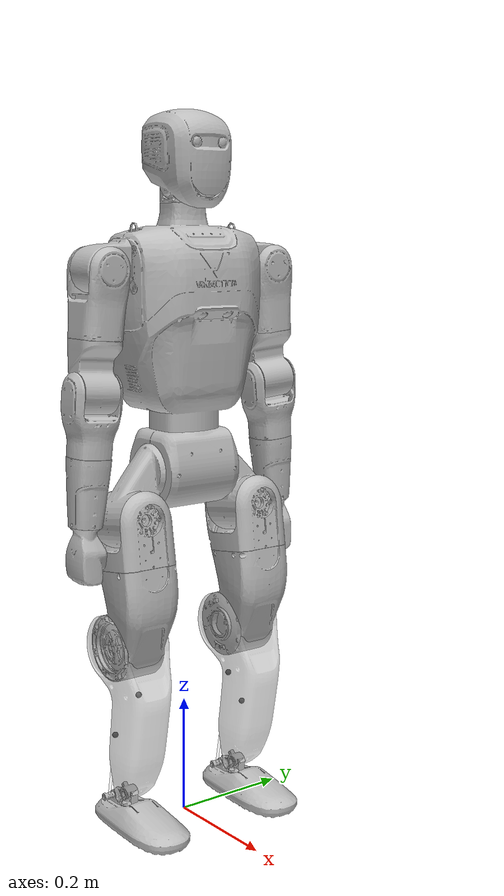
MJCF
<?xml version='1.0' encoding='utf-8'?>
<mujoco model="MiniV1-3_Lidar">
  <compiler angle="radian" meshdir="meshes_reduce_nonLidar/" />

  <option timestep="0.0002" />

  <default>
    <default class="mini">
      <default class="visual">
        <geom type="mesh" contype="0" conaffinity="0" group="2" density="0" material="silver" />
      </default>
      <default class="collision">
        <geom group="3" rgba="0.2 0.6 0.2 0.5" type="capsule" contype="1" conaffinity="1" />
        <default class="foot_capsule">
          <geom type="capsule" size="0.01" />
        </default>
      </default>
      <site group="5" rgba="1 0 0 1" />
    </default>
  </default>

  <asset>
    <material name="silver" rgba="0.752941 0.752941 0.752941 1" />
    <mesh name="pelvis_link" file="pelvis_link.STL" />
    <mesh name="left_hip_pitch_link" file="left_hip_pitch_link.STL" />
    <mesh name="left_hip_roll_link" file="left_hip_roll_link.STL" />
    <mesh name="left_hip_yaw_link" file="left_hip_yaw_link.STL" />
    <mesh name="left_knee_link" file="left_knee_link.STL" />
    <mesh name="left_ankle_pitch_link" file="left_ankle_pitch_link.STL" />
    <mesh name="left_ankle_roll_link" file="left_ankle_roll_link.STL" />
    <mesh name="right_hip_pitch_link" file="right_hip_pitch_link.STL" />
    <mesh name="right_hip_roll_link" file="right_hip_roll_link.STL" />
    <mesh name="right_hip_yaw_link" file="right_hip_yaw_link.STL" />
    <mesh name="right_knee_link" file="right_knee_link.STL" />
    <mesh name="right_ankle_pitch_link" file="right_ankle_pitch_link.STL" />
    <mesh name="right_ankle_roll_link" file="right_ankle_roll_link.STL" />
    <mesh name="torso_link" file="torso_link.STL" />
    <mesh name="left_shoulder_pitch_link" file="left_shoulder_pitch_link.STL" />
    <mesh name="left_shoulder_roll_link" file="left_shoulder_roll_link.STL" />
    <mesh name="left_shoulder_yaw_link" file="left_shoulder_yaw_link.STL" />
    <mesh name="left_elbow_link" file="left_elbow_link.STL" />
    <mesh name="left_wrist_yaw_link" file="left_wrist_yaw_link.STL" />
    <mesh name="left_hand_link" file="left_hand_link.STL" />
    <mesh name="right_shoulder_pitch_link" file="right_shoulder_pitch_link.STL" />
    <mesh name="right_shoulder_roll_link" file="right_shoulder_roll_link.STL" />
    <mesh name="right_shoulder_yaw_link" file="right_shoulder_yaw_link.STL" />
    <mesh name="right_elbow_link" file="right_elbow_link.STL" />
    <mesh name="right_wrist_yaw_link" file="right_wrist_yaw_link.STL" />
    <mesh name="right_hand_link" file="right_hand_link.STL" />
    <mesh name="head_yaw_link" file="head_yaw_link.STL" />
    <mesh name="head_pitch_link" file="head_pitch_link.STL" />
    <mesh name="ZED_OEM" file="ZED_OEM.STL" />
  </asset>

  <default>
    <default class="passive_joint">
      <joint damping="0.01" armature="0.0" frictionloss="0.0" solimplimit="0.95 0.99 0.001" solreflimit="0.002 1" limited="true" />
    </default>
    <default class="EC-A8116-P1-18H">
      <joint damping="0.12883747" armature="0.063828" frictionloss="0.7399" solimplimit="0.95 0.99 0.001" solreflimit="0.002 1" limited="true" />
    </default>
    <default class="EC-A6416-P2-30.25H">
      <joint damping="0.1" armature="0.093956787" frictionloss="0.42253" solimplimit="0.95 0.99 0.001" solreflimit="0.002 1" limited="true" />
    </default>
    <default class="EC-A6408-P2-30.25H">
      <joint damping="0.1" armature="0.057648938" frictionloss="0.42253" solimplimit="0.95 0.99 0.001" solreflimit="0.002 1" limited="true" />
    </default>
    <default class="EC-A4310-P2-36H">
      <joint damping="0.04505626" armature="0.023328" frictionloss="0.09318127" solimplimit="0.95 0.99 0.001" solreflimit="0.002 1" limited="true" />
    </default>
    <default class="EC-A2806-P2-36">
      <joint damping="0.05" armature="0.005522096" frictionloss="0.08" solimplimit="0.95 0.99 0.001" solreflimit="0.002 1" limited="true" />
    </default>
  </default>

  <worldbody>
    <body name="pelvis_link" pos="0 0 0.672" childclass="mini" quat="1 0 0 0">
      <inertial pos="0.00197991 2.27e-06 -0.06287835" quat="0.9988767 -0.0004044356 -0.04738326 -0.0001535962" mass="3.005544" diaginertia="0.007994987 0.006372019 0.007607024" />
      <joint name="floating_base_joint" type="free" limited="false" actuatorfrclimited="false" />
      <geom class="visual" mesh="pelvis_link" />
      <geom name="pelvis_collision" pos="0 0 -0.065" class="collision" type="sphere" size="0.065" />
      <site name="imu" size="0.01" pos="0 0 -0.12053" />

      <body name="left_hip_pitch_link" pos="0 0.0625 -0.06475" quat="1 0 0 0">
        <inertial pos="0.01470366 0.0476278 -0.06264868" quat="0.1589684 0.9095972 0.3553892 -0.1451221" mass="1.61152939" diaginertia="0.003437672 0.00301867 0.001978658" />
        <joint name="left_hip_pitch_joint" pos="0 0 0" axis="0 1 0" range="-2.674559 2.910495" class="EC-A8116-P1-18H" />
        <geom class="visual" mesh="left_hip_pitch_link" />

        <body name="left_hip_roll_link" pos="0.011784 0.052504 -0.074055" quat="0.996889 0 -0.07881816 0">
          <inertial pos="0.00476834 -8.53e-06 -0.04522799" quat="0.8689032 -7.861597e-07 -0.494982 -5.525135e-05" mass="0.70342769" diaginertia="0.001522644 0.00168329 0.001222996" />
          <joint name="left_hip_roll_joint" pos="0 0 0" axis="1 0 0" range="-0.6108652 2.268928" class="EC-A6416-P2-30.25H" />
          <geom class="visual" mesh="left_hip_roll_link" />
          <geom name="left_hip_collision" class="collision" size="0.05" fromto="0.00 0.0 0.0 0.00 0.0 -0.11" />

          <body name="left_hip_yaw_link" pos="0 0 -0.085148" quat="1 0 0 0">
            <inertial pos="-0.02157799 -0.00083568 -0.0769782" quat="0.7521142 -0.1426161 -0.1833375 0.6167432" mass="2.68034203" diaginertia="0.01174214 0.01101729 0.003841335" />
            <joint name="left_hip_yaw_joint" pos="0 0 0" axis="0 0 -1" range="-2.443461 2.443461" class="EC-A6408-P2-30.25H" />
            <geom class="visual" mesh="left_hip_yaw_link" />
            <geom name="left_thigh_collision" pos="0.015 0.0 -0.12" euler="0 0.57 0" class="collision" type="box" size="0.005 0.03 0.05" />

            <body name="left_knee_link" pos="-0.0451 0 -0.1233" quat="0.996889 0 0.07881816 0">
              <inertial pos="0.0258151 0.00045464 -0.12061859" quat="0.9987795 0.005430901 -0.0001620425 -0.0490926" mass="2.09107016" diaginertia="0.01272096 0.01248183 0.002515513" />
              <joint name="left_knee_joint" pos="0 0 0" axis="0 1 0" range="-0.1919862 2.70526" class="EC-A8116-P1-18H" />
              <geom class="visual" mesh="left_knee_link" rgba="0.7 0.7 0.7 0.5" />
              <geom name="left_knee_collision" euler="1.5707 0 0" class="collision" type="cylinder" size="0.054 0.05" />
              <geom name="left_knee_collision2" pos="0.067 0 -0.04" euler="0 -0.35 0" class="collision" type="box" size="0.005 0.038 0.015" />
              <geom name="left_shin_collision" class="collision" size="0.042" fromto="0.035 0.0 -0.095 0.018 0.0 -0.18" />
              <geom name="left_shin_collision2" class="collision" size="0.02" fromto="0.0065 0.0 -0.245 0.0045 0.0 -0.26" />

              <body name="left_ankle_motor_1_link" pos="0.001264345 0 -0.09157852" quat="-0.0005504359 0.9961945 -4.81569e-05 -0.08715573">
                <inertial pos="0 0 0" quat="1 0 0 0" mass="0.05" diaginertia="1e-05 1e-05 1e-05" />
                <joint name="left_ankle_motor_1_joint" pos="0 0 0" axis="-1 0 0" range="-1.050877 0.9415861" class="EC-A4310-P2-36H" />
                <geom name="left_anchor_point_1" contype="0" conaffinity="0" size="0.005" pos="0 0.02 0" rgba="0.2 0.2 0.2 1" />

                <body name="left_ankle_long_rod" pos="0 0.02 0" quat="0.7071065 -0.0001348002 -0.0006466539 -0.7071068">
                  <joint name="left-anchor_joint_1" pos="0.0 0.0 0.0" type="ball" damping="0.0" />
                  <geom type="cylinder" contype="0" conaffinity="0" size="0.0025 0.092" pos="0 0 0.092" rgba="1 1 1 0.3" />
                </body>
              </body>

              <body name="left_ankle_motor_2_link" pos="-0.01023565 0 -0.1565785" quat="0.9961946 -0.0003146547 0.08715574 2.752872e-05">
                <inertial pos="0 0 0" quat="1 0 0 0" mass="0.05" diaginertia="1e-05 1e-05 1e-05" />
                <joint name="left_ankle_motor_2_joint" pos="0 0 0" axis="-1 0 0" range="-0.9313161 1.193015" class="EC-A4310-P2-36H" />
                <geom name="left_anchor_point_2" contype="0" conaffinity="0" size="0.005" pos="0 0.02 0" rgba="0.2 0.2 0.2 1" />

                <body name="left_ankle_short_rod" pos="0 0.02 0" quat="-6.138761e-05 -0.7071066 0.7071068 0.0005081001">
                  <joint name="left-anchor_joint_2" pos="0.0 0.0 0.0" type="ball" damping="0.0" />
                  <geom type="cylinder" contype="0" conaffinity="0" size="0.0025 0.059" pos="0 0 0.059" rgba="1 1 1 0.3" />
                </body>
              </body>

              <body name="left_ankle_pitch_link" pos="0 0 -0.261" quat="1 0 0 0">
                <inertial pos="0.00198317 0.0 -0.00838611" quat="0.4473806 0.5475861 0.5475861 0.4473806" mass="0.12230048" diaginertia="2.696e-05 1.272488e-05 2.316512e-05" />
                <joint name="left_ankle_pitch_joint" pos="0 0 0" axis="0 1 0" range="-0.8726646 0.5235988" class="passive_joint" />
                <geom class="visual" mesh="left_ankle_pitch_link" />

                <body name="left_ankle_roll_link" pos="0 0 -0.023" quat="1 0 0 0">
                  <inertial pos="0.01931061 0.0 -0.01037183" quat="7.382304e-07 -0.680966 -2.911727e-06 -0.732315" mass="0.86300763" diaginertia="0.002582852 0.00233125 0.000438728" />
                  <joint name="left_ankle_roll_joint" pos="0 0 0" axis="1 0 0" range="-0.2617994 0.2617994" class="passive_joint" />
                  <geom class="visual" mesh="left_ankle_roll_link" />
                  <geom name="left_foot1_collision" class="foot_capsule" fromto="-0.042 -0.03 -0.022 0.1 -0.035 -0.022" />
                  <geom name="left_foot2_collision" class="foot_capsule" fromto="-0.05 -0.027 -0.022 0.12 -0.027 -0.022" />
                  <geom name="left_foot3_collision" class="foot_capsule" fromto="-0.056 -0.018 -0.022 0.128 -0.018 -0.022" />
                  <geom name="left_foot4_collision" class="foot_capsule" fromto="-0.06 -0.009 -0.022 0.132 -0.009 -0.022" />
                  <geom name="left_foot5_collision" class="foot_capsule" fromto="-0.06 0.0 -0.022 0.132 0.0 -0.022" />
                  <geom name="left_foot6_collision" class="foot_capsule" fromto="-0.06 0.009 -0.022 0.131 0.009 -0.022" />
                  <geom name="left_foot7_collision" class="foot_capsule" fromto="-0.056 0.018 -0.022 0.128 0.018 -0.022" />
                  <geom name="left_foot8_collision" class="foot_capsule" fromto="-0.05 0.027 -0.022 0.12 0.027 -0.022" />
                  <geom name="left_foot9_collision" class="foot_capsule" fromto="-0.042 0.03 -0.022 0.1 0.035 -0.022" />
                </body>
              </body>
            </body>
          </body>
        </body>
      </body>

      <body name="right_hip_pitch_link" pos="0 -0.0625 -0.06475" quat="1 0 0 0">
        <inertial pos="0.01469242 -0.0476432 -0.06259392" quat="0.9093419 0.1575725 0.1456894 -0.3564306" mass="1.61230743" diaginertia="0.003441187 0.003024699 0.001977264" />
        <joint name="right_hip_pitch_joint" pos="0 0 0" axis="0 -1 0" range="-2.910495 2.674559" class="EC-A8116-P1-18H" />
        <geom class="visual" mesh="right_hip_pitch_link" />

        <body name="right_hip_roll_link" pos="0.011784 -0.052504 -0.074055" quat="0.996889 0 -0.07881816 0">
          <inertial pos="0.00476833 -8.53e-06 -0.04522799" quat="0.8689032 -7.861597e-07 -0.494982 -5.525135e-05" mass="0.70342769" diaginertia="0.001522644 0.00168329 0.001222996" />
          <joint name="right_hip_roll_joint" pos="0 0 0" axis="1 0 0" range="-2.268928 0.6108652" class="EC-A6416-P2-30.25H" />
          <geom class="visual" mesh="right_hip_roll_link" />
          <geom name="right_hip_collision" class="collision" size="0.05" fromto="0.00 0.0 0.0 0.00 0.0 -0.11" />

          <body name="right_hip_yaw_link" pos="0 0 -0.085148" quat="1 0 0 0">
            <inertial pos="-0.02154921 0.00092456 -0.07699345" quat="0.6279133 -0.1805896 -0.1456576 0.7428972" mass="2.68019228" diaginertia="0.01173445 0.01102448 0.003839906" />
            <joint name="right_hip_yaw_joint" pos="0 0 0" axis="0 0 -1" range="-2.443461 2.443461" class="EC-A6408-P2-30.25H" />
            <geom class="visual" mesh="right_hip_yaw_link" />
            <geom name="right_thigh_collision" pos="0.015 0.0 -0.12" euler="0 0.57 0" class="collision" type="box" size="0.005 0.03 0.05" />

            <body name="right_knee_link" pos="-0.0451 0 -0.1233" quat="0.996889 0 0.07881816 0">
              <inertial pos="0.02581895 -0.000455 -0.12061461" quat="0.99875 -0.00537597 -0.0001870302 0.04969419" mass="2.09122431" diaginertia="0.01272193 0.01248257 0.002515846" />
              <joint name="right_knee_joint" pos="0 0 0" axis="0 -1 0" range="-2.70526 0.1919862" class="EC-A8116-P1-18H" />
              <geom class="visual" mesh="right_knee_link" rgba="0.7 0.7 0.7 0.5" />
              <geom name="right_knee_collision" euler="1.5707 0 0" class="collision" type="cylinder" size="0.054 0.05" />
              <geom name="right_knee_collision2" pos="0.067 0 -0.04" euler="0 -0.35 0" class="collision" type="box" size="0.005 0.038 0.015" />
              <geom name="right_shin_collision" class="collision" size="0.042" fromto="0.035 0.0 -0.095 0.018 0.0 -0.18" />
              <geom name="right_shin_collision2" class="collision" size="0.02" fromto="0.0065 0.0 -0.245 0.0045 0.0 -0.26" />

              <body name="right_ankle_motor_1_link" pos="0.001264345 0 -0.09157852" quat="0.9961945 -0.0005504359 0.08715573 4.81569e-05">
                <inertial pos="0 0 0" quat="1 0 0 0" mass="0.05" diaginertia="1e-05 1e-05 1e-05" />
                <joint name="right_ankle_motor_1_joint" pos="0 0 0" axis="-1 0 0" range="-0.9415861 1.050877" class="EC-A4310-P2-36H" />
                <geom name="right_anchor_point_1" contype="0" conaffinity="0" size="0.005" pos="0 0.02 0" rgba="0.2 0.2 0.2 1" />

                <body name="right_ankle_long_rod" pos="0 0.02 0" quat="0.0001348002 -0.7071065 0.7071068 0.0006466539">
                  <joint name="right-anchor_joint_1" pos="0.0 0.0 0.0" type="ball" damping="0.0" />
                  <geom type="cylinder" contype="0" conaffinity="0" size="0.0025 0.092" pos="0 0 0.092" rgba="1 1 1 0.3" />
                </body>
              </body>

              <body name="right_ankle_motor_2_link" pos="-0.01023565 0 -0.1565785" quat="-0.0003146547 0.9961946 -2.752872e-05 -0.08715574">
                <inertial pos="0 0 0" quat="1 0 0 0" mass="0.05" diaginertia="1e-05 1e-05 1e-05" />
                <joint name="right_ankle_motor_2_joint" pos="0 0 0" axis="-1 0 0" range="-1.193015 0.9313161" class="EC-A4310-P2-36H" />
                <geom name="right_anchor_point_2" contype="0" conaffinity="0" size="0.005" pos="0 0.02 0" rgba="0.2 0.2 0.2 1" />

                <body name="right_ankle_short_rod" pos="0 0.02 0" quat="0.7071066 6.138761e-05 -0.0005081001 -0.7071068">
                  <joint name="right-anchor_joint_2" pos="0.0 0.0 0.0" type="ball" damping="0.0" />
                  <geom type="cylinder" contype="0" conaffinity="0" size="0.0025 0.059" pos="0 0 0.059" rgba="1 1 1 0.3" />
                </body>
              </body>

              <body name="right_ankle_pitch_link" pos="0 0 -0.261" quat="1 0 0 0">
                <inertial pos="0.00198317 0.0 -0.00838611" quat="0.4473806 0.5475861 0.5475861 0.4473806" mass="0.12230048" diaginertia="2.696e-05 1.272488e-05 2.316512e-05" />
                <joint name="right_ankle_pitch_joint" pos="0 0 0" axis="0 1 0" range="-0.8726646 0.5235988" class="passive_joint" />
                <geom class="visual" mesh="right_ankle_pitch_link" />

                <body name="right_ankle_roll_link" pos="0 0 -0.023" quat="1 0 0 0">
                  <inertial pos="0.01931061 0.0 -0.01037183" quat="7.382304e-07 -0.680966 -2.911727e-06 -0.732315" mass="0.86300763" diaginertia="0.002582852 0.00233125 0.000438728" />
                  <joint name="right_ankle_roll_joint" pos="0 0 0" axis="1 0 0" range="-0.2617994 0.2617994" class="passive_joint" />
                  <geom class="visual" mesh="right_ankle_roll_link" />
                  <geom name="right_foot1_collision" class="foot_capsule" fromto="-0.042 -0.03 -0.022 0.1 -0.035 -0.022" />
                  <geom name="right_foot2_collision" class="foot_capsule" fromto="-0.05 -0.027 -0.022 0.12 -0.027 -0.022" />
                  <geom name="right_foot3_collision" class="foot_capsule" fromto="-0.056 -0.018 -0.022 0.128 -0.018 -0.022" />
                  <geom name="right_foot4_collision" class="foot_capsule" fromto="-0.06 -0.009 -0.022 0.132 -0.009 -0.022" />
                  <geom name="right_foot5_collision" class="foot_capsule" fromto="-0.06 0.0 -0.022 0.132 0.0 -0.022" />
                  <geom name="right_foot6_collision" class="foot_capsule" fromto="-0.06 0.009 -0.022 0.131 0.009 -0.022" />
                  <geom name="right_foot7_collision" class="foot_capsule" fromto="-0.056 0.018 -0.022 0.128 0.018 -0.022" />
                  <geom name="right_foot8_collision" class="foot_capsule" fromto="-0.05 0.027 -0.022 0.12 0.027 -0.022" />
                  <geom name="right_foot9_collision" class="foot_capsule" fromto="-0.042 0.03 -0.022 0.1 0.035 -0.022" />
                </body>
              </body>
            </body>
          </body>
        </body>
      </body>

      <body name="torso_link" pos="0 0 0" quat="1 0 0 0">
        <inertial pos="-0.00985771 0.00029299 0.177486" quat="0.9999778 0.004673169 -0.003876941 -0.002759375" mass="9.80061639" diaginertia="0.1088537 0.09345734 0.0479802" />
        <joint name="waist_joint" pos="0 0 0" axis="0 0 1" range="-2.792524 2.792524" class="EC-A6408-P2-30.25H" />
        <geom class="visual" mesh="torso_link" />
        <geom name="torso_collision" class="collision" type="box" size="0.065 0.1 0.15" pos="0 0 0.18" />
        <geom name="torso_collision2" class="collision" type="cylinder" size="0.058 0.015" pos="0 0 0.015" />

        <body name="torso_camera" pos="0.08338 0 0.18893" euler="0 -0.698131701 -1.5708">
          <camera name="ZED_torso" mode="fixed" fovy="78.4" />
        </body>

        <body name="left_shoulder_pitch_link" pos="0 0.1165 0.2595" quat="1 0 0 0">
          <inertial pos="0.00430601 0.04102807 0.0018977" quat="0.4673258 0.8719082 0.1438173 -0.02644431" mass="0.65960471" diaginertia="0.0003720705 0.0003396795 0.0002718" />
          <joint name="left_shoulder_pitch_joint" pos="0 0 0" axis="0 1 0" range="-3.141593 2.356194" class="EC-A4310-P2-36H" />
          <geom class="visual" mesh="left_shoulder_pitch_link" />
          <geom name="left_shoulder_pitch_collision" pos="0 0.045 0" euler="0 1.57 0" class="collision" type="cylinder" size="0.035 0.04" />

          <body name="left_shoulder_roll_link" pos="0 0.0455 0" quat="0.999229 0.03925991 0 0">
            <inertial pos="0.00091943 -0.00039794 -0.06820202" quat="0.9995908 -0.007767931 -0.02315136 0.01489697" mass="0.82956693" diaginertia="0.001131505 0.001313174 0.0006359509" />
            <joint name="left_shoulder_roll_joint" pos="0 0 0" axis="1 0 0" range="-0.1396263 3.141593" class="EC-A4310-P2-36H" />
            <geom class="visual" mesh="left_shoulder_roll_link" />

            <body name="left_shoulder_yaw_link" pos="0 0 -0.1055" quat="1 0 0 0">
              <inertial pos="-0.00196714 0.00444828 -0.05926182" quat="0.5280207 -0.005280622 0.053064 0.8475556" mass="0.87876071" diaginertia="0.001273688 0.001301285 0.0004010761" />
              <joint name="left_shoulder_yaw_joint" pos="0 0 0" axis="0 0 -1" range="-2.443461 2.443461" class="EC-A4310-P2-36H" />
              <geom class="visual" mesh="left_shoulder_yaw_link" />
              <geom name="left_shoulder_yaw_collision" class="collision" size="0.042" fromto="0.0 0.0 0.0 0.0 0.0 0.028" />
              <geom name="left_shoulder_yaw_collision2" pos="-0.015 -0.0005 -0.065" class="collision" type="box" size="0.02 0.026 0.025" />

              <body name="left_elbow_link" pos="0 0 -0.08525" quat="1 0 0 0">
                <inertial pos="6.766e-05 -0.00032884 -0.06295271" quat="0.7061708 -0.02016335 0.02037782 0.707461" mass="0.67206478" diaginertia="0.0006715362 0.0008060405 0.0003833334" />
                <joint name="left_elbow_joint" pos="0 0 0" axis="0 1 0" range="-2.234021 1.570796" class="EC-A4310-P2-36H" />
                <geom class="visual" mesh="left_elbow_link" />
                <geom name="left_elbow_yaw_collision" pos="0 0 0" euler="1.57 0 0" class="collision" type="cylinder" size="0.032 0.04" />

                <body name="left_wrist_yaw_link" pos="0 0 -0.09975" quat="1 0 0 0">
                  <inertial pos="-0.00252001 -0.00028068 -0.0497133" quat="0.9442265 -0.003100077 -0.01356219 -0.3290027" mass="0.31924085" diaginertia="0.0004936568 0.0004930274 0.0002168958" />
                  <joint name="left_wrist_yaw_joint" pos="0 0 0" axis="0 0 -1" range="-2.443461 2.443461" class="EC-A4310-P2-36H" />
                  <geom class="visual" mesh="left_wrist_yaw_link" />
                  <geom name="left_wrist_yaw_collision" class="collision" size="0.028" fromto="0.0 0.0 -0.092 0.0 0.0 0.035" />

                  <body name="left_hand_link" pos="0 0 -0.1075" quat="1 0 0 0">
                    <inertial pos="0.0010896 -0.0014795 -0.04984957" quat="0.6121535 0.0176858 -0.03037481 0.7899574" mass="0.20367604" diaginertia="0.0002032876 0.0001831736 6.852884e-05" />
                    <geom class="visual" mesh="left_hand_link" />
                    <geom name="left_hand_collision" class="collision" size="0.03" fromto="0.0 -0.005 -0.07 0.0 0.0 -0.03" />
                  </body>
                </body>
              </body>
            </body>
          </body>
        </body>

        <body name="right_shoulder_pitch_link" pos="0 -0.1165 0.2595" quat="1 0 0 0">
          <inertial pos="0.00430677 -0.04102735 0.00189828" quat="0.8718061 0.4672653 0.02717745 -0.1444948" mass="0.6596084" diaginertia="0.0003720848 0.0003396536 0.0002718216" />
          <joint name="right_shoulder_pitch_joint" pos="0 0 0" axis="0 -1 0" range="-2.356194 3.141593" class="EC-A4310-P2-36H" />
          <geom class="visual" mesh="right_shoulder_pitch_link" />
          <geom name="right_shoulder_pitch_collision" pos="0 -0.045 0" euler="0 1.57 0" class="collision" type="cylinder" size="0.035 0.04" />

          <body name="right_shoulder_roll_link" pos="0 -0.0455 0" quat="0.999229 -0.03925991 0 0">
            <inertial pos="0.00082045 0.00032827 -0.06820069" quat="0.9996465 0.006815268 -0.02098451 -0.01483603" mass="0.82957118" diaginertia="0.001131303 0.001313228 0.0006363798" />
            <joint name="right_shoulder_roll_joint" pos="0 0 0" axis="1 0 0" range="-3.141593 0.1396263" class="EC-A4310-P2-36H" />
            <geom class="visual" mesh="right_shoulder_roll_link" />

            <body name="right_shoulder_yaw_link" pos="0 0 -0.1055" quat="1 0 0 0">
              <inertial pos="-0.00196515 -0.00444783 -0.0592575" quat="0.8480405 0.05299815 -0.005301828 0.527248" mass="0.87856819" diaginertia="0.001274522 0.001302259 0.0004010593" />
              <joint name="right_shoulder_yaw_joint" pos="0 0 0" axis="0 0 -1" range="-2.443461 2.443461" class="EC-A4310-P2-36H" />
              <geom class="visual" mesh="right_shoulder_yaw_link" />
              <geom name="right_shoulder_yaw_collision" class="collision" size="0.042" fromto="0.0 0.0 0.0 0.0 0.0 0.028" />
              <geom name="right_shoulder_yaw_collision2" pos="-0.015 -0.0005 -0.065" class="collision" type="box" size="0.02 0.026 0.025" />

              <body name="right_elbow_link" pos="0 0 -0.08525" quat="1 0 0 0">
                <inertial pos="3.891e-05 0.0003554 -0.0629972" quat="0.7084886 0.01907791 -0.0197978 0.7051865" mass="0.67292131" diaginertia="0.0006729289 0.0008074735 0.0003842477" />
                <joint name="right_elbow_joint" pos="0 0 0" axis="0 -1 0" range="-1.570796 2.234021" class="EC-A4310-P2-36H" />
                <geom class="visual" mesh="right_elbow_link" />
                <geom name="right_elbow_yaw_collision" pos="0 0 0" euler="1.57 0 0" class="collision" type="cylinder" size="0.032 0.04" />

                <body name="right_wrist_yaw_link" pos="0 0 -0.09975" quat="1 0 0 0">
                  <inertial pos="-0.00252024 0.00028361 -0.05012422" quat="0.9477698 0.0027485 -0.01512474 0.3185844" mass="0.31924689" diaginertia="0.0004956656 0.0004949979 0.0002168465" />
                  <joint name="right_wrist_yaw_joint" pos="0 0 0" axis="0 0 -1" range="-2.443461 2.443461" class="EC-A4310-P2-36H" />
                  <geom class="visual" mesh="right_wrist_yaw_link" />
                  <geom name="right_wrist_yaw_collision" class="collision" size="0.028" fromto="0.0 0.0 -0.092 0.0 0.0 0.035" />

                  <body name="right_hand_link" pos="0 0 -0.1075" quat="1 0 0 0">
                    <inertial pos="0.0010878 0.00147348 -0.04985937" quat="0.7900977 -0.03034839 0.01765404 0.6119746" mass="0.20392081" diaginertia="0.0002033211 0.0001831986 6.855027e-05" />
                    <geom class="visual" mesh="right_hand_link" />
                    <geom name="right_hand_collision" class="collision" size="0.03" fromto="0.0 0.005 -0.07 0.0 0.0 -0.03" />
                  </body>
                </body>
              </body>
            </body>
          </body>
        </body>

        <body name="head_yaw_link" pos="0 0 0.3555" quat="1 0 0 0">
          <inertial pos="-0.00067647 0.00288474 0.0292658" quat="0.6387691 0.3167551 -0.2309065 0.6620592" mass="0.27684817" diaginertia="0.0001375662 0.0001180913 0.0001273425" />
          <joint name="head_yaw_joint" pos="0 0 0" axis="0 0 1" range="-1.047198 1.047198" class="EC-A2806-P2-36" />
          <geom class="visual" mesh="head_yaw_link" />

          <body name="head_pitch_link" pos="0 0 0.0345" quat="1 0 0 0">
            <inertial pos="0.01090255 3.019e-05 0.04875512" quat="0.6415773 0.3224002 0.331613 0.6119392" mass="0.73234668" diaginertia="0.001970637 0.002041065 0.001672218" />
            <joint name="head_pitch_joint" pos="0 0 0" axis="0 1 0" range="-0.6108652 0.5235988" class="EC-A2806-P2-36" />
            <geom class="visual" mesh="head_pitch_link" />
            <geom name="head_collision" class="collision" size="0.088" fromto="0.012 0.0 0.035 0.012 0.0 0.055" />

            <body name="head_camera" pos="0.06875 0 0.0625" euler="1.5708 -1.5708 0">
              <camera name="ZED_head" mode="fixed" fovy="78.4" />
            </body>
          </body>
        </body>
      </body>
    </body>
  </worldbody>

  <equality>
    <connect body2="left_ankle_short_rod" body1="left_ankle_roll_link" anchor="-0.03082192 0.02 0.01121826" solref="0.0001 1" />
    <connect body2="left_ankle_long_rod" body1="left_ankle_roll_link" anchor="-0.03082192 -0.02 0.01121826" solref="0.0001 1" />
    <connect body2="right_ankle_short_rod" body1="right_ankle_roll_link" anchor="-0.03082192 -0.02 0.01121826" solref="0.0001 1" />
    <connect body2="right_ankle_long_rod" body1="right_ankle_roll_link" anchor="-0.03082192 0.02 0.01121826" solref="0.0001 1" />
  </equality>

  <actuator>
    <general name="left_hip_pitch" joint="left_hip_pitch_joint" ctrlrange="-130 130" />
    <general name="left_hip_roll" joint="left_hip_roll_joint" ctrlrange="-132 132" />
    <general name="left_hip_yaw" joint="left_hip_yaw_joint" ctrlrange="-70 70" />
    <general name="left_knee" joint="left_knee_joint" ctrlrange="-130 130" />
    <general name="left_ankle_motor_1_joint" joint="left_ankle_motor_1_joint" ctrlrange="-36 36" />
    <general name="left_ankle_motor_2_joint" joint="left_ankle_motor_2_joint" ctrlrange="-36 36" />
    <general name="right_hip_pitch" joint="right_hip_pitch_joint" ctrlrange="-130 130" />
    <general name="right_hip_roll" joint="right_hip_roll_joint" ctrlrange="-132 132" />
    <general name="right_hip_yaw" joint="right_hip_yaw_joint" ctrlrange="-70 70" />
    <general name="right_knee" joint="right_knee_joint" ctrlrange="-130 130" />
    <general name="right_ankle_motor_1_joint" joint="right_ankle_motor_1_joint" ctrlrange="-36 36" />
    <general name="right_ankle_motor_2_joint" joint="right_ankle_motor_2_joint" ctrlrange="-36 36" />
    <general name="waist" joint="waist_joint" ctrlrange="-70 70" />
    <general name="left_shoulder_pitch" joint="left_shoulder_pitch_joint" ctrlrange="-36 36" />
    <general name="left_shoulder_roll" joint="left_shoulder_roll_joint" ctrlrange="-36 36" />
    <general name="left_shoulder_yaw" joint="left_shoulder_yaw_joint" ctrlrange="-36 36" />
    <general name="left_elbow" joint="left_elbow_joint" ctrlrange="-36 36" />
    <general name="left_wrist_yaw" joint="left_wrist_yaw_joint" ctrlrange="-36 36" />
    <general name="right_shoulder_pitch" joint="right_shoulder_pitch_joint" ctrlrange="-36 36" />
    <general name="right_shoulder_roll" joint="right_shoulder_roll_joint" ctrlrange="-36 36" />
    <general name="right_shoulder_yaw" joint="right_shoulder_yaw_joint" ctrlrange="-36 36" />
    <general name="right_elbow" joint="right_elbow_joint" ctrlrange="-36 36" />
    <general name="right_wrist_yaw" joint="right_wrist_yaw_joint" ctrlrange="-36 36" />
    <general name="head_yaw" joint="head_yaw_joint" ctrlrange="-12 12" />
    <general name="head_pitch" joint="head_pitch_joint" ctrlrange="-12 12" />
  </actuator>

  <sensor>
    <jointpos name="left_hip_pitch_pos" joint="left_hip_pitch_joint" />
    <jointpos name="left_hip_roll_pos" joint="left_hip_roll_joint" />
    <jointpos name="left_hip_yaw_pos" joint="left_hip_yaw_joint" />
    <jointpos name="left_knee_pos" joint="left_knee_joint" />
    <jointpos name="left_ankle_motor_1_pos" joint="left_ankle_motor_1_joint" />
    <jointpos name="left_ankle_motor_2_pos" joint="left_ankle_motor_2_joint" />
    <jointpos name="right_hip_pitch_pos" joint="right_hip_pitch_joint" />
    <jointpos name="right_hip_roll_pos" joint="right_hip_roll_joint" />
    <jointpos name="right_hip_yaw_pos" joint="right_hip_yaw_joint" />
    <jointpos name="right_knee_pos" joint="right_knee_joint" />
    <jointpos name="right_ankle_motor_1_pos" joint="right_ankle_motor_1_joint" />
    <jointpos name="right_ankle_motor_2_pos" joint="right_ankle_motor_2_joint" />
    <jointpos name="waist_pos" joint="waist_joint" />
    <jointpos name="left_shoulder_pitch_pos" joint="left_shoulder_pitch_joint" />
    <jointpos name="left_shoulder_roll_pos" joint="left_shoulder_roll_joint" />
    <jointpos name="left_shoulder_yaw_pos" joint="left_shoulder_yaw_joint" />
    <jointpos name="left_elbow_pos" joint="left_elbow_joint" />
    <jointpos name="left_wrist_yaw_pos" joint="left_wrist_yaw_joint" />
    <jointpos name="right_shoulder_pitch_pos" joint="right_shoulder_pitch_joint" />
    <jointpos name="right_shoulder_roll_pos" joint="right_shoulder_roll_joint" />
    <jointpos name="right_shoulder_yaw_pos" joint="right_shoulder_yaw_joint" />
    <jointpos name="right_elbow_pos" joint="right_elbow_joint" />
    <jointpos name="right_wrist_yaw_pos" joint="right_wrist_yaw_joint" />
    <jointpos name="head_yaw_pos" joint="head_yaw_joint" />
    <jointpos name="head_pitch_pos" joint="head_pitch_joint" />
    <jointvel name="left_hip_pitch_vel" joint="left_hip_pitch_joint" />
    <jointvel name="left_hip_roll_vel" joint="left_hip_roll_joint" />
    <jointvel name="left_hip_yaw_vel" joint="left_hip_yaw_joint" />
    <jointvel name="left_knee_vel" joint="left_knee_joint" />
    <jointvel name="left_ankle_motor_1_vel" joint="left_ankle_motor_1_joint" />
    <jointvel name="left_ankle_motor_2_vel" joint="left_ankle_motor_2_joint" />
    <jointvel name="right_hip_pitch_vel" joint="right_hip_pitch_joint" />
    <jointvel name="right_hip_roll_vel" joint="right_hip_roll_joint" />
    <jointvel name="right_hip_yaw_vel" joint="right_hip_yaw_joint" />
    <jointvel name="right_knee_vel" joint="right_knee_joint" />
    <jointvel name="right_ankle_motor_1_vel" joint="right_ankle_motor_1_joint" />
    <jointvel name="right_ankle_motor_2_vel" joint="right_ankle_motor_2_joint" />
    <jointvel name="waist_vel" joint="waist_joint" />
    <jointvel name="left_shoulder_pitch_vel" joint="left_shoulder_pitch_joint" />
    <jointvel name="left_shoulder_roll_vel" joint="left_shoulder_roll_joint" />
    <jointvel name="left_shoulder_yaw_vel" joint="left_shoulder_yaw_joint" />
    <jointvel name="left_elbow_vel" joint="left_elbow_joint" />
    <jointvel name="left_wrist_yaw_vel" joint="left_wrist_yaw_joint" />
    <jointvel name="right_shoulder_pitch_vel" joint="right_shoulder_pitch_joint" />
    <jointvel name="right_shoulder_roll_vel" joint="right_shoulder_roll_joint" />
    <jointvel name="right_shoulder_yaw_vel" joint="right_shoulder_yaw_joint" />
    <jointvel name="right_elbow_vel" joint="right_elbow_joint" />
    <jointvel name="right_wrist_yaw_vel" joint="right_wrist_yaw_joint" />
    <jointvel name="head_yaw_vel" joint="head_yaw_joint" />
    <jointvel name="head_pitch_vel" joint="head_pitch_joint" />
    <jointactuatorfrc name="left_hip_pitch_torque" joint="left_hip_pitch_joint" />
    <jointactuatorfrc name="left_hip_roll_torque" joint="left_hip_roll_joint" />
    <jointactuatorfrc name="left_hip_yaw_torque" joint="left_hip_yaw_joint" />
    <jointactuatorfrc name="left_knee_torque" joint="left_knee_joint" />
    <jointactuatorfrc name="left_ankle_motor_1_torque" joint="left_ankle_motor_1_joint" />
    <jointactuatorfrc name="left_ankle_motor_2_torque" joint="left_ankle_motor_2_joint" />
    <jointactuatorfrc name="right_hip_pitch_torque" joint="right_hip_pitch_joint" />
    <jointactuatorfrc name="right_hip_roll_torque" joint="right_hip_roll_joint" />
    <jointactuatorfrc name="right_hip_yaw_torque" joint="right_hip_yaw_joint" />
    <jointactuatorfrc name="right_knee_torque" joint="right_knee_joint" />
    <jointactuatorfrc name="right_ankle_motor_1_torque" joint="right_ankle_motor_1_joint" />
    <jointactuatorfrc name="right_ankle_motor_2_torque" joint="right_ankle_motor_2_joint" />
    <jointactuatorfrc name="waist_torque" joint="waist_joint" />
    <jointactuatorfrc name="left_shoulder_pitch_torque" joint="left_shoulder_pitch_joint" />
    <jointactuatorfrc name="left_shoulder_roll_torque" joint="left_shoulder_roll_joint" />
    <jointactuatorfrc name="left_shoulder_yaw_torque" joint="left_shoulder_yaw_joint" />
    <jointactuatorfrc name="left_elbow_torque" joint="left_elbow_joint" />
    <jointactuatorfrc name="left_wrist_yaw_torque" joint="left_wrist_yaw_joint" />
    <jointactuatorfrc name="right_shoulder_pitch_torque" joint="right_shoulder_pitch_joint" />
    <jointactuatorfrc name="right_shoulder_roll_torque" joint="right_shoulder_roll_joint" />
    <jointactuatorfrc name="right_shoulder_yaw_torque" joint="right_shoulder_yaw_joint" />
    <jointactuatorfrc name="right_elbow_torque" joint="right_elbow_joint" />
    <jointactuatorfrc name="right_wrist_yaw_torque" joint="right_wrist_yaw_joint" />
    <jointactuatorfrc name="head_yaw_torque" joint="head_yaw_joint" />
    <jointactuatorfrc name="head_pitch_torque" joint="head_pitch_joint" />
    <framequat name="imu_quat" objtype="site" objname="imu" />
    <gyro name="imu_gyro" site="imu" />
    <accelerometer name="imu_acc" site="imu" />
    <framepos name="frame_pos" objtype="site" objname="imu" />
    <framelinvel name="frame_vel" objtype="site" objname="imu" />
  </sensor>

  <equality>
    <!-- for unit test -->
    <weld name="unit_test" body1="world" body2="pelvis_link" relpose="0 0 1 1 0 0 0" />
  </equality>
</mujoco>
